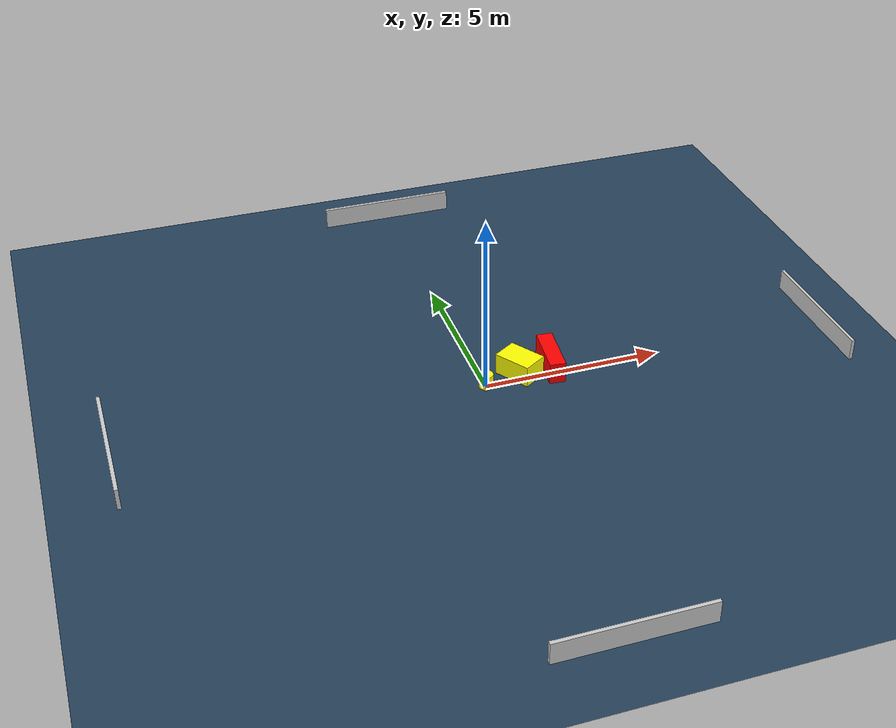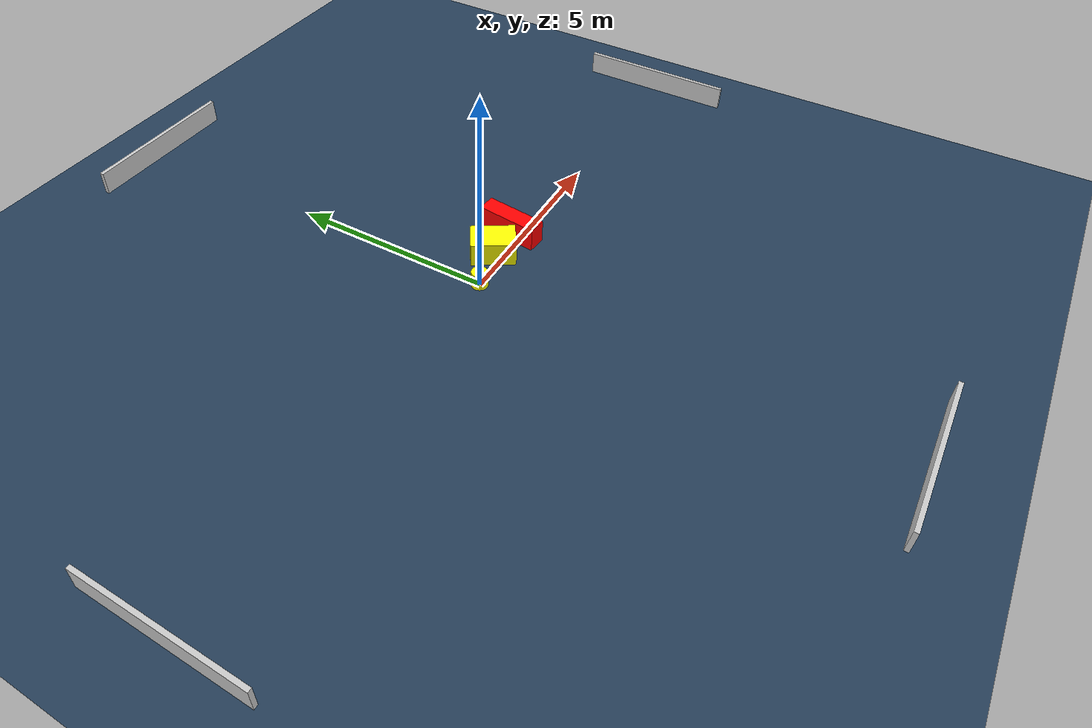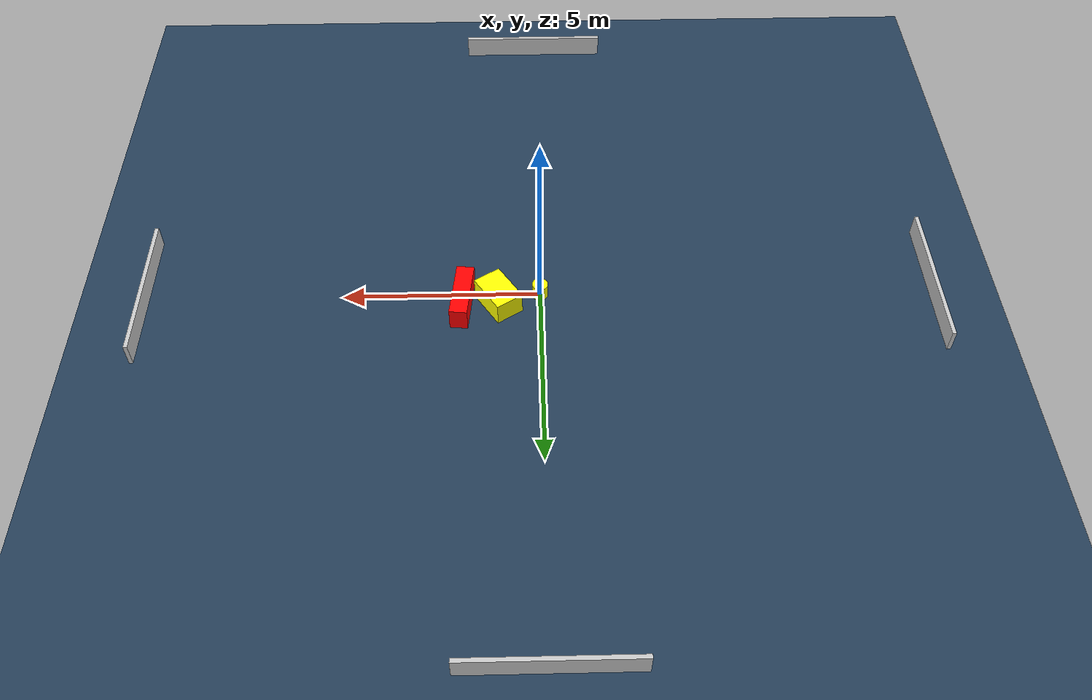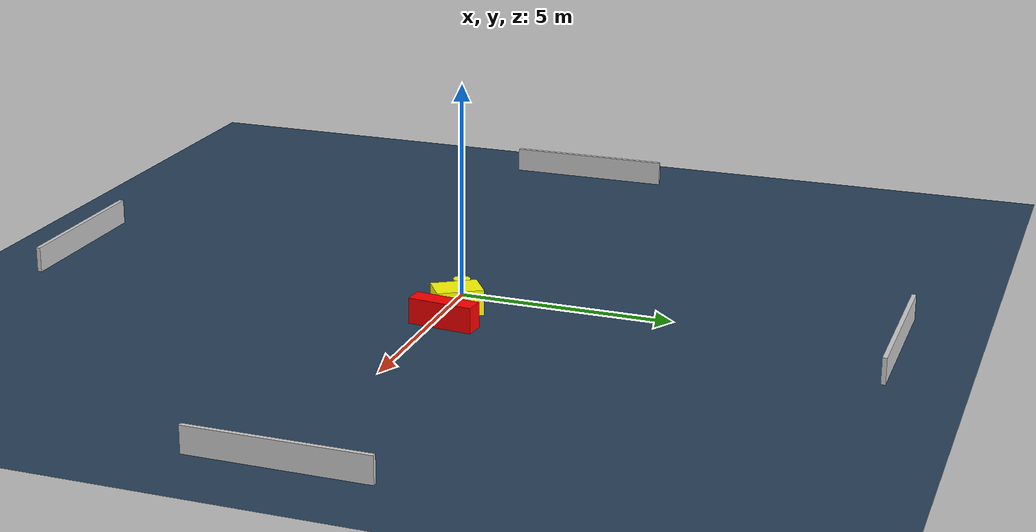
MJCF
<?xml version="1.0" ?>
<mujoco model="generated_environment">
  <option timestep="0.01" integrator="RK4" cone="elliptic"/>
  <default>
    <geom density="1"/>
  </default>
  <asset>
    <texture builtin="gradient" height="3072" name="skybox" rgb1="0.3 0.5 0.7" rgb2="0 0 0" type="skybox" width="512"/>
    <texture builtin="checker" height="300" name="groundplane" rgb1="0.2 0.3 0.4" rgb2="0.1 0.2 0.3" type="2d" width="300"/>
    <material name="groundplane" reflectance="0.2" texrepeat="5 5" texture="groundplane"/>
  </asset>
  <worldbody>
    <light dir="0 0 -1" directional="true" pos="0 0 1.5"/>
    <geom condim="3" friction="0.5 0.005 0.001" material="groundplane" name="floor" pos="0 0 0" size="0 0 0.05" type="plane"/>
    <body name="walls">
      <geom name="wall_1" condim="4" pos="-10.0 0.0 0.3" rgba="0.800000011920929 0.800000011920929 0.800000011920929 1.0" size="0.05 2.0 0.3" type="box"/>
      <geom name="wall_2" condim="4" pos="10.0 0.0 0.3" rgba="0.800000011920929 0.800000011920929 0.800000011920929 1.0" size="0.05 2.0 0.3" type="box"/>
      <geom name="wall_3" condim="4" pos="0.0 -10.0 0.3" rgba="0.800000011920929 0.800000011920929 0.800000011920929 1.0" size="2.0 0.05 0.3" type="box"/>
      <geom name="wall_4" condim="4" pos="0.0 10.0 0.3" rgba="0.800000011920929 0.800000011920929 0.800000011920929 1.0" size="2.0 0.05 0.3" type="box"/>
    </body>
    <body name="robot">
      <joint name="joint_x" type="slide" pos="0 0 0" axis="1 0 0"/>
      <joint name="joint_y" type="slide" pos="0 0 0" axis="0 1 0"/>
      <geom name="robot" type="cylinder" pos="0.0 0.0 0.2" size="0.2 0.2 0.0" mass="5.0" friction="1.0 0.005 0.0001" condim="4" rgba="1.0 1.0 0.0 1.0"/>
    </body>
    <body name="obstacle_1_movable">
      <geom name="obstacle_1_movable" condim="4" pos="1.0570832217181103 0.27471783051268023 0.3" euler="0 0 32.98032792735782" friction="0.0 0.005 0.001" rgba="1.0 1.0 0.0 1.0" size="0.36840728602029726 0.5400587544185693 0.3" type="box" mass="0.1"/>
      <joint type="free"/>
    </body>
    <body name="obstacle_2_static">
      <geom name="obstacle_2_static" condim="4" pos="1.9690643187382397 0.3007530700724048 0.3" euler="0 0 83.84336999611934" friction="0.0 0.005 0.001" rgba="1.0 0.0 0.0 1.0" size="0.7620501304236706 0.22499481199924987 0.3" type="box"/>
    </body>
  </worldbody>
  <actuator>
    <motor name="actuator_x" joint="joint_x" gear="1" ctrlrange="-1 1"/>
    <motor name="actuator_y" joint="joint_y" gear="1" ctrlrange="-1 1"/>
  </actuator>
</mujoco>
